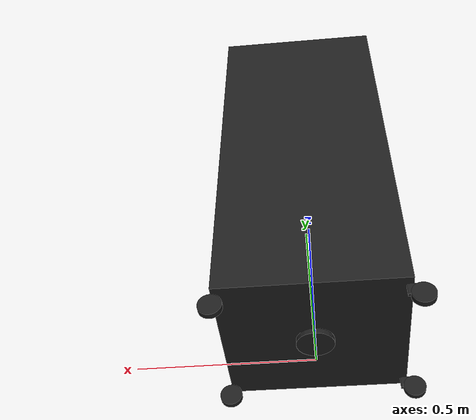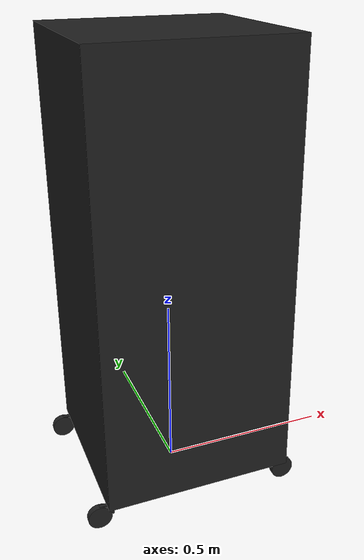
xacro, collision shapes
<?xml version="1.0" ?>
<robot name="turtlebot3_waffle_pi" xmlns:xacro="http://ros.org/wiki/xacro">
  <xacro:include filename="$(find turtlebot3_description)/urdf/common_properties.xacro"/>
  <xacro:include filename="$(find turtlebot3_description)/urdf/turtlebot3_waffle_pi.gazebo.xacro"/>

  <link name="base_footprint"/>

  <joint name="base_joint" type="fixed">
    <parent link="base_footprint"/>
    <child link="base_link" />
    <origin xyz="0 0 0.666" rpy="0 0 0"/>
  </joint>

  <link name="base_link">
    <visual>
      <origin xyz="0 0 0" rpy="0 0 0"/>
      <geometry>
        <box size="0.53 0.50 1.20"/>
      </geometry>
      <material name="light_black"/>
    </visual>

    <collision>
      <origin xyz="0 0 0" rpy="0 0 0"/>
      <geometry>
        <box size="0.53 0.50 1.20"/>
      </geometry>
    </collision>

    <inertial>
      <origin xyz="0 0 0" rpy="0 0 0"/>
      <mass value="20.00e+00"/>
      <inertia ixx="3" ixy="0" ixz="0"
               iyy="2.82" iyz="0"
               izz="0.83" />
    </inertial>
  </link>

  <joint name="wheel_left_joint" type="continuous">
    <parent link="base_link"/>
    <child link="wheel_left_link"/>
    <origin xyz="0.265 0.22 -0.633" rpy="-1.57 0 0"/>
    <axis xyz="0 0 1"/>
  </joint>

  <link name="wheel_left_link">
    <visual>
      <origin xyz="0 0 0" rpy="1.57 0 0"/>
      <geometry>
        <mesh filename="package://turtlebot3_description/meshes/wheels/left_tire.stl" scale="0.001 0.001 0.001"/>
      </geometry>
      <material name="dark"/>
    </visual>

    <collision>
      <origin xyz="0 0 0" rpy="0 0 0"/>
      <geometry>
        <cylinder length="0.018" radius="0.033"/>
      </geometry>
    </collision>

    <inertial>
      <origin xyz="0 0 0" />
      <mass value="2.8498940e-02" />
      <inertia ixx="1.1175580e-05" ixy="-4.2369783e-11" ixz="-5.9381719e-09"
               iyy="1.1192413e-05" iyz="-1.4400107e-11"
               izz="2.0712558e-05" />
      </inertial>
  </link>

  <joint name="wheel_right_joint" type="continuous">
    <parent link="base_link"/>
    <child link="wheel_right_link"/>
    <origin xyz="0.265 -0.22 -0.633" rpy="-1.57 0 0"/>
    <axis xyz="0 0 1"/>
  </joint>

  <link name="wheel_right_link">
    <visual>
      <origin xyz="0 0 0" rpy="1.57 0 0"/>
      <geometry>
        <mesh filename="package://turtlebot3_description/meshes/wheels/right_tire.stl" scale="0.001 0.001 0.001"/>
      </geometry>
      <material name="dark"/>
    </visual>

    <collision>
      <origin xyz="0 0 0" rpy="0 0 0"/>
      <geometry>
        <cylinder length="0.018" radius="0.033"/>
      </geometry>
    </collision>

    <inertial>
      <origin xyz="0 0 0" />
      <mass value="2.8498940e-02" />
      <inertia ixx="1.1175580e-05" ixy="-4.2369783e-11" ixz="-5.9381719e-09"
               iyy="1.1192413e-05" iyz="-1.4400107e-11"
               izz="2.0712558e-05" />
      </inertial>
  </link>

  <joint name="caster_back_right_joint" type="continuous">
    <parent link="base_link"/>
    <child link="caster_back_right_link"/>
    <origin xyz="-0.265 -0.22 -0.6" rpy="0 0 0"/>
    <axis xyz="0 0 1"/>
  </joint>

  <link name="caster_back_right_link">
    <visual>
      <origin xyz="0 0 -0.0165" rpy="0 0 0"/>
      <geometry>
        <box size="0.04 0.01 0.033"/>
      </geometry>
      <material name="dark"/>
    </visual>

    <collision>
      <origin xyz="0 0 -0.0165" rpy="0 0 0"/>
      <geometry>
        <box size="0.04 0.01 0.033"/>
      </geometry>
    </collision>

    <inertial>
      <origin xyz="0 0 0" />
      <mass value="0.01" />
      <inertia ixx="0.0001" ixy="0.0" ixz="0.0"
               iyy="0.0001" iyz="0.0"
               izz="0.0001" />
    </inertial>
  </link>

  <joint name="wheel_back_right_joint" type="continuous">
    <parent link="caster_back_right_link"/>
    <child link="wheel_back_right_link"/>
    <axis xyz="0 0 1"/>
    <origin xyz="-0.02 0 -0.033" rpy="-1.57 0 0"/>
  </joint>

  <link name="wheel_back_right_link">
    <visual>
      <origin xyz="0 0 0" rpy="0 0 0"/>
      <geometry>
        <cylinder length="0.018" radius="0.033"/>
      </geometry>
      <material name="dark"/>
    </visual>

    <collision>
      <origin xyz="0 0 0" rpy="0 0 0"/>
      <geometry>
        <cylinder length="0.018" radius="0.033"/>
      </geometry>
    </collision>

    <inertial>
      <origin xyz="0 0 0" />
      <mass value="2.8498940e-02" />
      <inertia ixx="1.1175580e-05" ixy="-4.2369783e-11" ixz="-5.9381719e-09"
               iyy="1.1192413e-05" iyz="-1.4400107e-11"
               izz="2.0712558e-05" />
    </inertial>
  </link>

  <joint name="caster_back_left_joint" type="continuous">
    <parent link="base_link"/>
    <child link="caster_back_left_link"/>
    <origin xyz="-0.265 0.22 -0.6" rpy="0 0 0"/>
    <axis xyz="0 0 1"/>
  </joint>

  <link name="caster_back_left_link">
    <visual>
      <origin xyz="0 0 -0.0165" rpy="0 0 0"/>
      <geometry>
        <box size="0.04 0.01 0.033"/>
      </geometry>
      <material name="dark"/>
    </visual>

    <collision>
      <origin xyz="0 0 -0.0165" rpy="0 0 0"/>
      <geometry>
        <box size="0.04 0.01 0.033"/>
      </geometry>
    </collision>

    <inertial>
      <origin xyz="0 0 0" />
      <mass value="0.01" />
      <inertia ixx="0.0001" ixy="0.0" ixz="0.0"
               iyy="0.0001" iyz="0.0"
               izz="0.0001" />
    </inertial>
  </link>

  <joint name="wheel_back_left_joint" type="continuous">
    <parent link="caster_back_left_link"/>
    <child link="wheel_back_left_link"/>
    <axis xyz="0 0 1"/>
    <origin xyz="-0.02 0 -0.033" rpy="-1.57 0 0"/>
  </joint>

  <link name="wheel_back_left_link">
    <visual>
      <origin xyz="0 0 0" rpy="0 0 0"/>
      <geometry>
        <cylinder length="0.018" radius="0.033"/>
      </geometry>
      <material name="dark"/>
    </visual>

    <collision>
      <origin xyz="0 0 0" rpy="0 0 0"/>
      <geometry>
        <cylinder length="0.018" radius="0.033"/>
      </geometry>
    </collision>

    <inertial>
      <origin xyz="0 0 0" />
      <mass value="2.8498940e-02" />
      <inertia ixx="1.1175580e-05" ixy="-4.2369783e-11" ixz="-5.9381719e-09"
               iyy="1.1192413e-05" iyz="-1.4400107e-11"
               izz="2.0712558e-05" />
    </inertial>
  </link>

  <joint name="sonar_bottom_right_joint" type="fixed">
    <parent link="base_link" />
    <child link="sonar_bottom_right_link" />
    <origin xyz="0.265 -0.16 -0.51" rpy="0 0 0" />
  </joint>

  <link name="sonar_bottom_right_link">
    <visual>
      <origin xyz="0 0 0" rpy="0 0 0"/>
      <geometry>
        <box size="0.005 0.05 0.05"/>
      </geometry>
      <material name="blue"/>
    </visual>

    <collision>
      <origin xyz="0 0 0" rpy="0 0 0"/>
      <geometry>
        <box size="0.005 0.05 0.05"/>
      </geometry>
    </collision>

    <inertial>
      <origin xyz="0 0 0" />
      <mass value="1.8498940e-02" />
      <inertia ixx="0.1175580e-05" ixy="-3.2369783e-11" ixz="-4.9381719e-09"
               iyy="0.1192413e-05" iyz="-0.4400107e-11"
               izz="0.0712558e-05" />
      </inertial>
  </link>

  <joint name="sonar_bottom_left_joint" type="fixed">
    <parent link="base_link" />
    <child link="sonar_bottom_left_link" />
    <origin xyz="0.265 0.16 -0.51" rpy="0 0 0" />
  </joint>

  <link name="sonar_bottom_left_link">
    <visual>
      <origin xyz="0 0 0" rpy="0 0 0"/>
      <geometry>
        <box size="0.005 0.05 0.05"/>
      </geometry>
      <material name="blue"/>
    </visual>

    <collision>
      <origin xyz="0 0 0" rpy="0 0 0"/>
      <geometry>
        <box size="0.005 0.05 0.05"/>
      </geometry>
    </collision>

    <inertial>
      <origin xyz="0 0 0" />
      <mass value="1.8498940e-02" />
      <inertia ixx="0.1175580e-05" ixy="-3.2369783e-11" ixz="-4.9381719e-09"
               iyy="0.1192413e-05" iyz="-0.4400107e-11"
               izz="0.0712558e-05" />
      </inertial>
  </link>

  <joint name="imu_joint" type="fixed">
    <parent link="base_link"/>
    <child link="imu_link"/>
    <origin xyz="-0.05 -0.13 -0.546" rpy="0 -1.57 1.57"/>
  </joint>

  <link name="imu_link">
    <visual>
      <origin xyz="0 0 0" rpy="0 0 0"/>
      <geometry>
        <box size="0.05 0.1 0.01"/>
      </geometry>
      <material name="dark"/>
    </visual>

    <collision>
      <origin xyz="0 0 0" rpy="0 0 0"/>
      <geometry>
        <box size="0.05 0.1 0.01"/>
      </geometry>
      <material name="dark"/>
    </collision>
  </link>

  <joint name="scan_joint" type="fixed">
    <parent link="base_link"/>
    <child link="base_scan"/>
    <origin xyz="0 0 -0.65" rpy="3.14 3.14 0"/>
  </joint>

  <link name="base_scan">
    <visual>
      <origin xyz="0.014 0 0.05" rpy="0 0 0"/>
      <geometry>
        <mesh filename="package://turtlebot3_description/meshes/sensors/rplidar.stl" scale="0.001 0.001 0.001"/>
      </geometry>
      <material name="dark"/>
    </visual>

    <collision>
      <origin xyz="0 0 0.05" rpy="0 0 0"/>
      <geometry>
        <cylinder length="0.0315" radius="0.055"/>
      </geometry>
    </collision>

    <inertial>
      <mass value="0.114" />
      <origin xyz="0 0 0" />
      <inertia ixx="0.001" ixy="0.0" ixz="0.0"
               iyy="0.001" iyz="0.0"
               izz="0.001" />
    </inertial>
  </link>

</robot>
